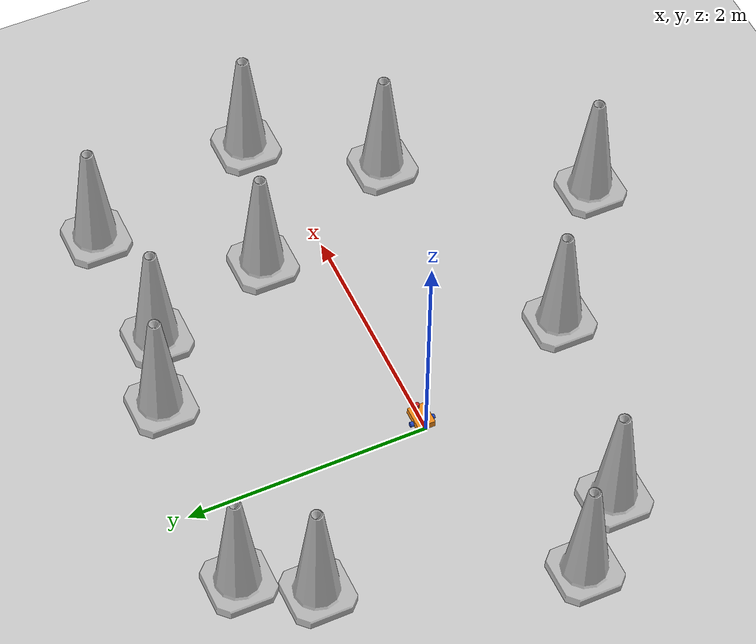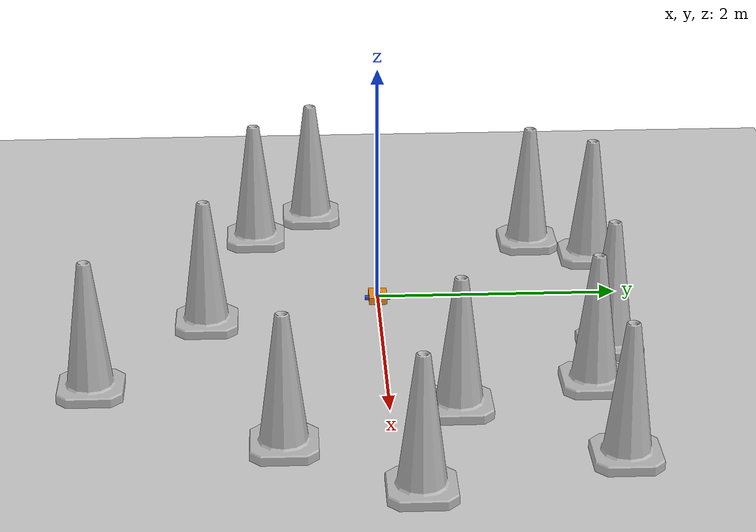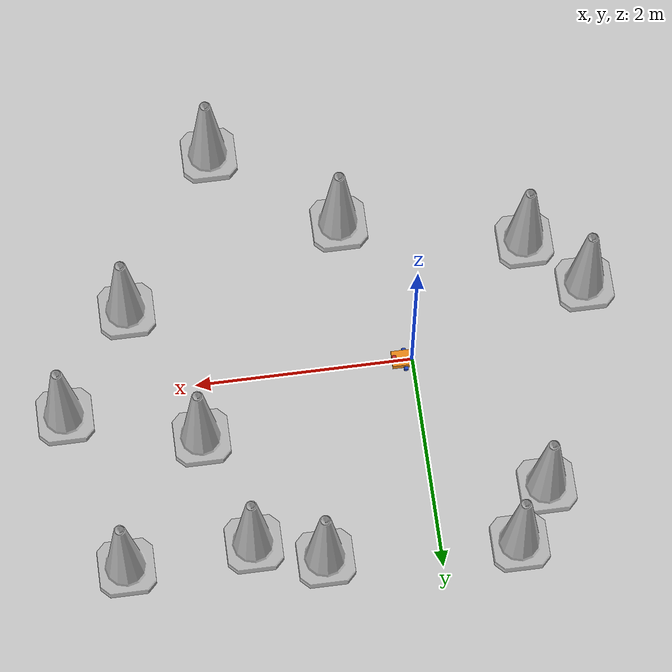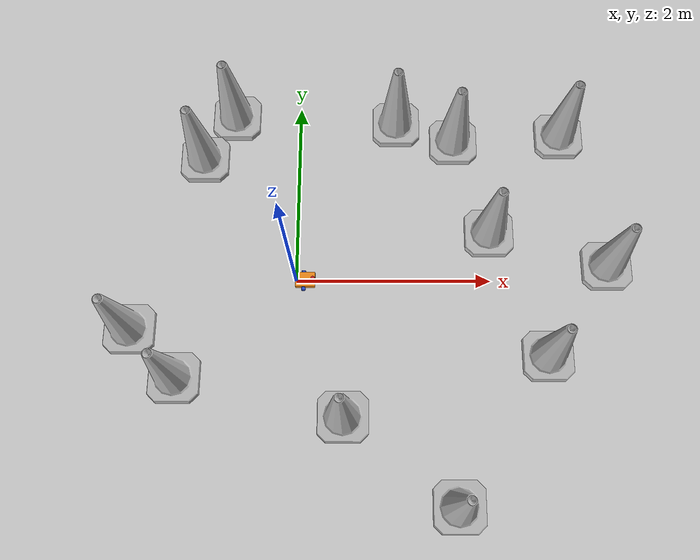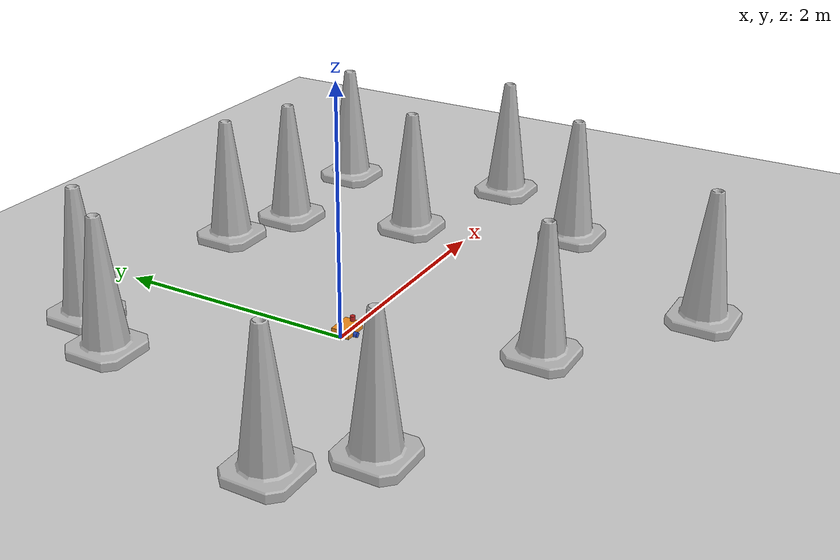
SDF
<sdf version="1.7">
 <world name="default">
  <light name="sun" type="directional">
   <pose>0 0 10 0 -0 0</pose>
   <diffuse>0.8 0.8 0.8 1</diffuse>
   <specular>0.2 0.2 0.2 1</specular>
   <attenuation>
    <range>1000</range>
    <constant>0.9</constant>
    <linear>0.01</linear>
    <quadratic>0.001</quadratic>
   </attenuation>
   <direction>-0.5 0.1 -0.9</direction>
   <spot><inner_angle>0</inner_angle><outer_angle>0</outer_angle><falloff>0</falloff></spot>
  </light>
  <model name="ground_plane">
   <static>1</static>
   <link name="link">
    <collision name="collision">
     <geometry><plane><normal>0 0 1</normal><size>100 100</size></plane></geometry>
     <surface><friction><ode><mu>100</mu><mu2>50</mu2></ode></friction></surface>
    </collision>
    <visual name="visual">
     <cast_shadows>0</cast_shadows>
     <geometry><plane><normal>0 0 1</normal><size>100 100</size></plane></geometry>
     <material>
      <script><uri>file://media/materials/scripts/gazebo.material</uri><name>Gazebo/Grey</name></script>
     </material>
    </visual>
   </link>
  </model>
  <gravity>0 0 -9.8</gravity>
  <magnetic_field>6e-06 2.3e-05 -4.2e-05</magnetic_field>
  <atmosphere type="adiabatic"/>
  <physics type="ode">
   <max_step_size>0.001</max_step_size>
   <real_time_factor>1</real_time_factor>
   <real_time_update_rate>1000</real_time_update_rate>
  </physics>
  <scene><ambient>0.4 0.4 0.4 1</ambient><background>0.7 0.7 0.7 1</background><shadows>1</shadows></scene>
  <audio><device>default</device></audio>
  <spherical_coordinates>
   <surface_model>EARTH_WGS84</surface_model>
   <latitude_deg>0</latitude_deg>
   <longitude_deg>0</longitude_deg>
   <elevation>0</elevation>
   <heading_deg>0</heading_deg>
  </spherical_coordinates>
  <model name="robot">
   <link name="base_link">
    <inertial>
     <pose>0.033934 0 0.028098 0 -0 0</pose>
     <mass>0.61</mass>
     <inertia>
      <ixx>0.00132609</ixx>
      <ixy>0</ixy>
      <ixz>-0.000328164</ixz>
      <iyy>0.00260181</iyy>
      <iyz>0</iyz>
      <izz>0.00317562</izz>
     </inertia>
    </inertial>
    <collision name="base_link_fixed_joint_lump__chassis_collision">
     <pose>0.02 0 0.02 0 -0 0</pose>
     <geometry><box><size>0.2 0.15 0.06</size></box></geometry>
    </collision>
    <collision name="base_link_fixed_joint_lump__caster_wheel_collision_1">
     <pose>0.07 0 0.014 0 -0 0</pose>
     <geometry><sphere><radius>0.035</radius></sphere></geometry>
     <surface><friction><ode><mu>0.001</mu><mu2>0.001</mu2></ode></friction></surface>
    </collision>
    <collision name="base_link_fixed_joint_lump__laser_frame_collision_2">
     <pose>0.1 0 0.07 0 -0 0</pose>
     <geometry><cylinder><length>0.04</length><radius>0.02</radius></cylinder></geometry>
    </collision>
    <visual name="base_link_fixed_joint_lump__chassis_visual">
     <pose>0.02 0 0.02 0 -0 0</pose>
     <geometry><box><size>0.2 0.15 0.06</size></box></geometry>
     <material>
      <script><name>Gazebo/Orange</name><uri>file://media/materials/scripts/gazebo.material</uri></script>
     </material>
    </visual>
    <visual name="base_link_fixed_joint_lump__caster_wheel_visual_1">
     <pose>0.07 0 0.014 0 -0 0</pose>
     <geometry><sphere><radius>0.035</radius></sphere></geometry>
     <material>
      <script><name>Gazebo/White</name><uri>file://media/materials/scripts/gazebo.material</uri></script>
     </material>
    </visual>
    <visual name="base_link_fixed_joint_lump__laser_frame_visual_2">
     <pose>0.1 0 0.07 0 -0 0</pose>
     <geometry><cylinder><length>0.04</length><radius>0.02</radius></cylinder></geometry>
     <material>
      <script><name>Gazebo/Red</name><uri>file://media/materials/scripts/gazebo.material</uri></script>
     </material>
    </visual>
    <sensor name="laser" type="ray">
     <visualize>0</visualize>
     <update_rate>10</update_rate>
     <ray>
      <scan>
       <horizontal>
        <samples>682</samples>
        <min_angle>-2.094</min_angle>
        <max_angle>2.094</max_angle>
        <resolution>1</resolution>
       </horizontal>
       <vertical><samples>1</samples><min_angle>0</min_angle><max_angle>0</max_angle></vertical>
      </scan>
      <range><min>0.06</min><max>12</max></range>
     </ray>
     <plugin name="laser_controller" filename="libgazebo_ros_ray_sensor.so">
      <ros><argument>~/out:=scan</argument></ros>
      <output_type>sensor_msgs/LaserScan</output_type>
      <frame_name>laser_frame</frame_name>
     </plugin>
     <pose>0.1 0 0.07 0 -0 0</pose>
    </sensor>
   </link>
   <joint name="left_wheel_joint" type="revolute">
    <pose relative_to="base_link">0 0.09 0 -1.5708 0 0</pose>
    <parent>base_link</parent>
    <child>left_wheel</child>
    <axis>
     <xyz>0 0 1</xyz>
     <limit><lower>-1e+16</lower><upper>1e+16</upper></limit>
     <dynamics><spring_reference>0</spring_reference><spring_stiffness>0</spring_stiffness></dynamics>
    </axis>
   </joint>
   <link name="left_wheel">
    <pose relative_to="left_wheel_joint">0 0 0 0 -0 0</pose>
    <inertial>
     <mass>0.1</mass>
     <inertia>
      <ixx>1.8525e-05</ixx>
      <ixy>0</ixy>
      <ixz>0</ixz>
      <iyy>1.8525e-05</iyy>
      <iyz>0</iyz>
      <izz>2.205e-05</izz>
     </inertia>
    </inertial>
    <collision name="left_wheel_collision">
     <geometry><sphere><radius>0.021</radius></sphere></geometry>
    </collision>
    <visual name="left_wheel_visual">
     <geometry><cylinder><length>0.03</length><radius>0.021</radius></cylinder></geometry>
     <material>
      <script><name>Gazebo/Blue</name><uri>file://media/materials/scripts/gazebo.material</uri></script>
     </material>
    </visual>
   </link>
   <joint name="right_wheel_joint" type="revolute">
    <pose relative_to="base_link">0 -0.09 0 1.5708 -0 0</pose>
    <parent>base_link</parent>
    <child>right_wheel</child>
    <axis>
     <xyz>0 0 -1</xyz>
     <limit><lower>-1e+16</lower><upper>1e+16</upper></limit>
     <dynamics><spring_reference>0</spring_reference><spring_stiffness>0</spring_stiffness></dynamics>
    </axis>
   </joint>
   <link name="right_wheel">
    <pose relative_to="right_wheel_joint">0 0 0 0 -0 0</pose>
    <inertial>
     <mass>0.1</mass>
     <inertia>
      <ixx>1.8525e-05</ixx>
      <ixy>0</ixy>
      <ixz>0</ixz>
      <iyy>1.8525e-05</iyy>
      <iyz>0</iyz>
      <izz>2.205e-05</izz>
     </inertia>
    </inertial>
    <collision name="right_wheel_collision">
     <geometry><sphere><radius>0.021</radius></sphere></geometry>
    </collision>
    <visual name="right_wheel_visual">
     <geometry><cylinder><length>0.03</length><radius>0.021</radius></cylinder></geometry>
     <material>
      <script><name>Gazebo/Blue</name><uri>file://media/materials/scripts/gazebo.material</uri></script>
     </material>
    </visual>
   </link>
   <static>0</static>
   <plugin name="gazebo_ros2_control" filename="libgazebo_ros2_control.so">
    <parameters>/home/mpinho/proj_ws/install/msc_aut_vehicles/share/msc_aut_vehicles/config/my_controllers.yaml</parameters>
   </plugin>
   <pose>0.069431 0.000518 0.020997 3.1e-05 -4.3e-05 -0.002581</pose>
  </model>
  <model name="Construction Cone">
   <link name="link">
    <collision name="collision">
     <geometry>
      <mesh><scale>10 10 10</scale><uri>model://construction_cone/meshes/construction_cone.dae</uri></mesh>
     </geometry>
    </collision>
    <visual name="visual">
     <geometry>
      <mesh><scale>10 10 10</scale><uri>model://construction_cone/meshes/construction_cone.dae</uri></mesh>
     </geometry>
    </visual>
    <inertial>
     <inertia><ixx>1</ixx><ixy>0</ixy><ixz>0</ixz><iyy>1</iyy><iyz>0</iyz><izz>1</izz></inertia>
     <mass>1</mass>
    </inertial>
   </link>
   <pose>1.03497 1.80094 -0 0 -1e-06 0</pose>
  </model>
  <model name="Construction Cone_0">
   <link name="link">
    <collision name="collision">
     <geometry>
      <mesh><scale>10 10 10</scale><uri>model://construction_cone/meshes/construction_cone.dae</uri></mesh>
     </geometry>
    </collision>
    <visual name="visual">
     <geometry>
      <mesh><scale>10 10 10</scale><uri>model://construction_cone/meshes/construction_cone.dae</uri></mesh>
     </geometry>
    </visual>
    <inertial>
     <inertia><ixx>1</ixx><ixy>0</ixy><ixz>0</ixz><iyy>1</iyy><iyz>0</iyz><izz>1</izz></inertia>
     <mass>1</mass>
    </inertial>
   </link>
   <pose>1.65427 1.58724 -0 0 -0 0</pose>
  </model>
  <model name="Construction Cone_1">
   <link name="link">
    <collision name="collision">
     <geometry>
      <mesh><scale>10 10 10</scale><uri>model://construction_cone/meshes/construction_cone.dae</uri></mesh>
     </geometry>
    </collision>
    <visual name="visual">
     <geometry>
      <mesh><scale>10 10 10</scale><uri>model://construction_cone/meshes/construction_cone.dae</uri></mesh>
     </geometry>
    </visual>
    <inertial>
     <inertia><ixx>1</ixx><ixy>0</ixy><ixz>0</ixz><iyy>1</iyy><iyz>0</iyz><izz>1</izz></inertia>
     <mass>1</mass>
    </inertial>
   </link>
   <pose>2 0.52108 -4e-06 4e-06 -1e-06 0</pose>
  </model>
  <model name="Construction Cone_2">
   <link name="link">
    <collision name="collision">
     <geometry>
      <mesh><scale>10 10 10</scale><uri>model://construction_cone/meshes/construction_cone.dae</uri></mesh>
     </geometry>
    </collision>
    <visual name="visual">
     <geometry>
      <mesh><scale>10 10 10</scale><uri>model://construction_cone/meshes/construction_cone.dae</uri></mesh>
     </geometry>
    </visual>
    <inertial>
     <inertia><ixx>1</ixx><ixy>0</ixy><ixz>0</ixz><iyy>1</iyy><iyz>0</iyz><izz>1</izz></inertia>
     <mass>1</mass>
    </inertial>
   </link>
   <pose>2.54171 -0.797973 -0 0 -1e-06 0</pose>
  </model>
  <model name="Construction Cone_3">
   <link name="link">
    <collision name="collision">
     <geometry>
      <mesh><scale>10 10 10</scale><uri>model://construction_cone/meshes/construction_cone.dae</uri></mesh>
     </geometry>
    </collision>
    <visual name="visual">
     <geometry>
      <mesh><scale>10 10 10</scale><uri>model://construction_cone/meshes/construction_cone.dae</uri></mesh>
     </geometry>
    </visual>
    <inertial>
     <inertia><ixx>1</ixx><ixy>0</ixy><ixz>0</ixz><iyy>1</iyy><iyz>0</iyz><izz>1</izz></inertia>
     <mass>1</mass>
    </inertial>
   </link>
   <pose>3.20525 0.15836 -0 0 -0 0</pose>
  </model>
  <model name="Construction Cone_4">
   <link name="link">
    <collision name="collision">
     <geometry>
      <mesh><scale>10 10 10</scale><uri>model://construction_cone/meshes/construction_cone.dae</uri></mesh>
     </geometry>
    </collision>
    <visual name="visual">
     <geometry>
      <mesh><scale>10 10 10</scale><uri>model://construction_cone/meshes/construction_cone.dae</uri></mesh>
     </geometry>
    </visual>
    <inertial>
     <inertia><ixx>1</ixx><ixy>0</ixy><ixz>0</ixz><iyy>1</iyy><iyz>0</iyz><izz>1</izz></inertia>
     <mass>1</mass>
    </inertial>
   </link>
   <pose>2.80531 1.65961 -0 0 -0 0</pose>
  </model>
  <model name="Construction Cone_5">
   <link name="link">
    <collision name="collision">
     <geometry>
      <mesh><scale>10 10 10</scale><uri>model://construction_cone/meshes/construction_cone.dae</uri></mesh>
     </geometry>
    </collision>
    <visual name="visual">
     <geometry>
      <mesh><scale>10 10 10</scale><uri>model://construction_cone/meshes/construction_cone.dae</uri></mesh>
     </geometry>
    </visual>
    <inertial>
     <inertia><ixx>1</ixx><ixy>0</ixy><ixz>0</ixz><iyy>1</iyy><iyz>0</iyz><izz>1</izz></inertia>
     <mass>1</mass>
    </inertial>
   </link>
   <pose>0.492968 -1.41236 -0 -0 -0 -0</pose>
  </model>
  <model name="Construction Cone_6">
   <link name="link">
    <collision name="collision">
     <geometry>
      <mesh><scale>10 10 10</scale><uri>model://construction_cone/meshes/construction_cone.dae</uri></mesh>
     </geometry>
    </collision>
    <visual name="visual">
     <geometry>
      <mesh><scale>10 10 10</scale><uri>model://construction_cone/meshes/construction_cone.dae</uri></mesh>
     </geometry>
    </visual>
    <inertial>
     <inertia><ixx>1</ixx><ixy>0</ixy><ixz>0</ixz><iyy>1</iyy><iyz>0</iyz><izz>1</izz></inertia>
     <mass>1</mass>
    </inertial>
   </link>
   <pose>-0.704411 1.87931 -0 -0 -0 -0.003313</pose>
  </model>
  <model name="Construction Cone_7">
   <link name="link">
    <collision name="collision">
     <geometry>
      <mesh><scale>10 10 10</scale><uri>model://construction_cone/meshes/construction_cone.dae</uri></mesh>
     </geometry>
    </collision>
    <visual name="visual">
     <geometry>
      <mesh><scale>10 10 10</scale><uri>model://construction_cone/meshes/construction_cone.dae</uri></mesh>
     </geometry>
    </visual>
    <inertial>
     <inertia><ixx>1</ixx><ixy>0</ixy><ixz>0</ixz><iyy>1</iyy><iyz>0</iyz><izz>1</izz></inertia>
     <mass>1</mass>
    </inertial>
   </link>
   <pose>-1.02599 1.37618 -0 -0 -1e-06 0.003691</pose>
  </model>
  <model name="Construction Cone_8">
   <link name="link">
    <collision name="collision">
     <geometry>
      <mesh><scale>10 10 10</scale><uri>model://construction_cone/meshes/construction_cone.dae</uri></mesh>
     </geometry>
    </collision>
    <visual name="visual">
     <geometry>
      <mesh><scale>10 10 10</scale><uri>model://construction_cone/meshes/construction_cone.dae</uri></mesh>
     </geometry>
    </visual>
    <inertial>
     <inertia><ixx>1</ixx><ixy>0</ixy><ixz>0</ixz><iyy>1</iyy><iyz>0</iyz><izz>1</izz></inertia>
     <mass>1</mass>
    </inertial>
   </link>
   <pose>1.61022 -2.2656 -8e-06 -6e-06 0 0</pose>
  </model>
  <model name="Construction Cone_9">
   <link name="link">
    <collision name="collision">
     <geometry>
      <mesh><scale>10 10 10</scale><uri>model://construction_cone/meshes/construction_cone.dae</uri></mesh>
     </geometry>
    </collision>
    <visual name="visual">
     <geometry>
      <mesh><scale>10 10 10</scale><uri>model://construction_cone/meshes/construction_cone.dae</uri></mesh>
     </geometry>
    </visual>
    <inertial>
     <inertia><ixx>1</ixx><ixy>0</ixy><ixz>0</ixz><iyy>1</iyy><iyz>0</iyz><izz>1</izz></inertia>
     <mass>1</mass>
    </inertial>
   </link>
   <pose>-1.67686 -0.525861 -0 0 -0 0</pose>
  </model>
  <model name="Construction Cone_10">
   <link name="link">
    <collision name="collision">
     <geometry>
      <mesh><scale>10 10 10</scale><uri>model://construction_cone/meshes/construction_cone.dae</uri></mesh>
     </geometry>
    </collision>
    <visual name="visual">
     <geometry>
      <mesh><scale>10 10 10</scale><uri>model://construction_cone/meshes/construction_cone.dae</uri></mesh>
     </geometry>
    </visual>
    <inertial>
     <inertia><ixx>1</ixx><ixy>0</ixy><ixz>0</ixz><iyy>1</iyy><iyz>0</iyz><izz>1</izz></inertia>
     <mass>1</mass>
    </inertial>
   </link>
   <pose>-1.19078 -1.0242 -0 0 -1e-06 0</pose>
  </model>
 </world>
</sdf>
